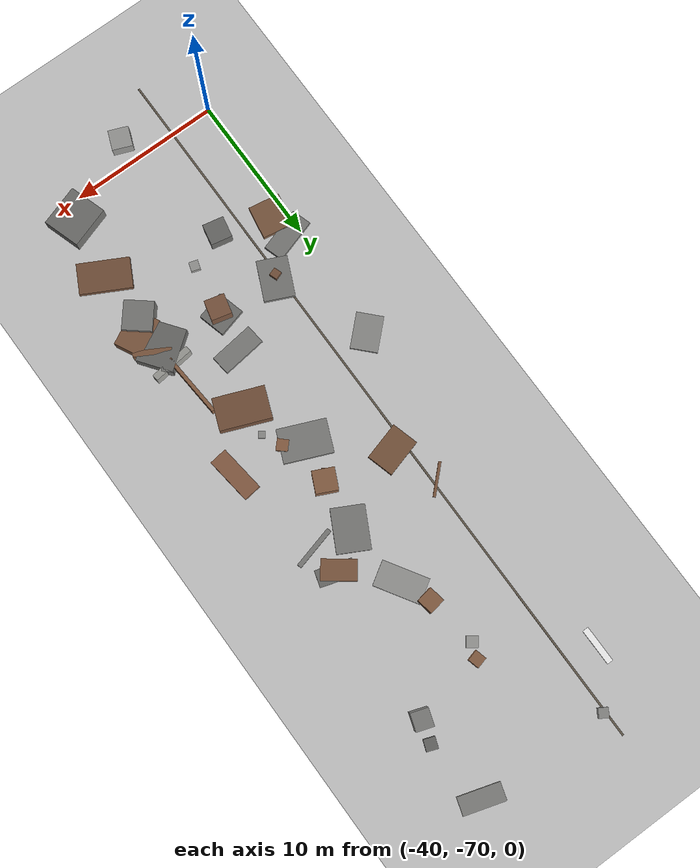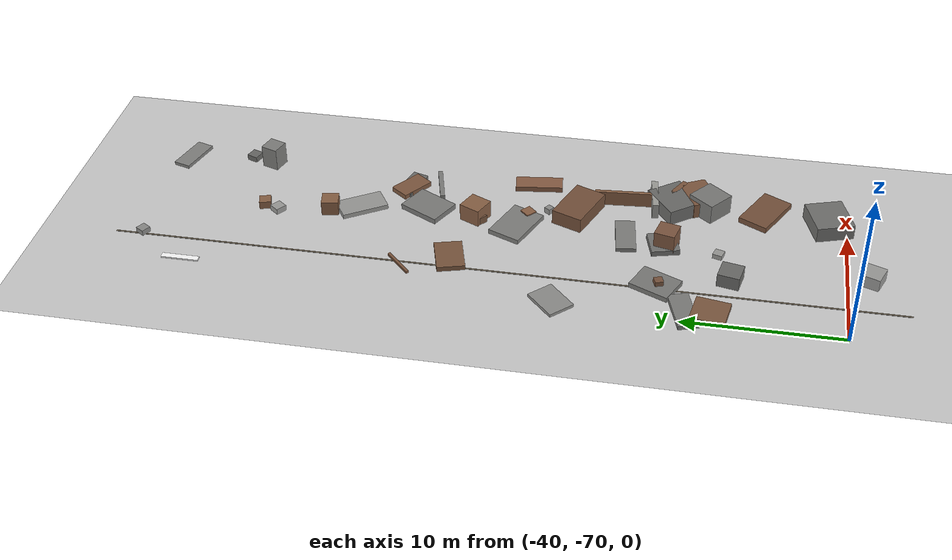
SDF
<sdf version="1.6">
 <world name="navitas_arena">
  <model name="ground_plane">
   <static>true</static>
   <link name="link">
    <collision name="collision">
     <geometry><plane><normal>0 0 1</normal><size>400 400</size></plane></geometry>
     <surface><friction><ode><mu>0.8</mu><mu2>0.8</mu2></ode></friction></surface>
    </collision>
    <visual name="visual">
     <cast_shadows>false</cast_shadows>
     <geometry><plane><normal>0 0 1</normal><size>400 400</size></plane></geometry>
     <material>
      <script><uri>file://media/materials/scripts/gazebo.material</uri><name>Gazebo/Grey</name></script>
     </material>
    </visual>
   </link>
  </model>
  <model name="gv_zor_-1">
   <static>true</static>
   <pose>-37.200 -48.800 0.010 0 0 0.000</pose>
   <link name="link">
    <collision name="col"><geometry><box><size>0.120 50.000 0.020</size></box></geometry></collision>
    <visual name="vis">
     <geometry><box><size>0.120 50.000 0.020</size></box></geometry>
     <material><ambient>0.42 0.38 0.32 1</ambient><diffuse>0.42 0.38 0.32 1</diffuse></material>
    </visual>
   </link>
  </model>
  <model name="blk_zor_1_0_0">
   <static>true</static>
   <pose>-28.604 -61.173 0.660 0 0 0.885</pose>
   <link name="link">
    <collision name="col"><geometry><box><size>1.904 1.904 1.320</size></box></geometry></collision>
    <visual name="vis">
     <geometry><box><size>1.904 1.904 1.320</size></box></geometry>
     <material><ambient>0.48 0.48 0.47 1</ambient><diffuse>0.48 0.48 0.47 1</diffuse></material>
    </visual>
   </link>
  </model>
  <model name="blk_zor_1_0_1">
   <static>true</static>
   <pose>-27.967 -60.430 0.500 0 0 0.477</pose>
   <link name="link">
    <collision name="col"><geometry><box><size>2.531 1.827 1.000</size></box></geometry></collision>
    <visual name="vis">
     <geometry><box><size>2.531 1.827 1.000</size></box></geometry>
     <material><ambient>0.50 0.35 0.25 1</ambient><diffuse>0.50 0.35 0.25 1</diffuse></material>
    </visual>
   </link>
  </model>
  <model name="blk_zor_1_1_0">
   <static>true</static>
   <pose>-28.702 -58.895 0.500 0 0 0.641</pose>
   <link name="link">
    <collision name="col"><geometry><box><size>2.751 2.394 1.000</size></box></geometry></collision>
    <visual name="vis">
     <geometry><box><size>2.751 2.394 1.000</size></box></geometry>
     <material><ambient>0.42 0.42 0.41 1</ambient><diffuse>0.42 0.42 0.41 1</diffuse></material>
    </visual>
   </link>
  </model>
  <model name="blk_zor_1_1_1">
   <static>true</static>
   <pose>-28.008 -58.865 0.500 0 0 2.625</pose>
   <link name="link">
    <collision name="col"><geometry><box><size>2.425 0.370 1.000</size></box></geometry></collision>
    <visual name="vis">
     <geometry><box><size>2.425 0.370 1.000</size></box></geometry>
     <material><ambient>0.50 0.35 0.25 1</ambient><diffuse>0.50 0.35 0.25 1</diffuse></material>
    </visual>
   </link>
  </model>
  <model name="blk_zor_1_2_0">
   <static>true</static>
   <pose>-28.562 -57.587 0.500 0 0 0.115</pose>
   <link name="link">
    <collision name="col"><geometry><box><size>2.722 0.417 1.000</size></box></geometry></collision>
    <visual name="vis">
     <geometry><box><size>2.722 0.417 1.000</size></box></geometry>
     <material><ambient>0.62 0.62 0.60 1</ambient><diffuse>0.62 0.62 0.60 1</diffuse></material>
    </visual>
   </link>
  </model>
  <model name="blk_zor_1_2_1">
   <static>true</static>
   <pose>-28.268 -57.582 0.500 0 0 0.850</pose>
   <link name="link">
    <collision name="col"><geometry><box><size>0.712 0.712 1.000</size></box></geometry></collision>
    <visual name="vis">
     <geometry><box><size>0.712 0.712 1.000</size></box></geometry>
     <material><ambient>0.48 0.48 0.47 1</ambient><diffuse>0.48 0.48 0.47 1</diffuse></material>
    </visual>
   </link>
  </model>
  <model name="blk_zor_1_3_0">
   <static>true</static>
   <pose>-28.773 -55.797 0.500 0 0 1.648</pose>
   <link name="link">
    <collision name="col"><geometry><box><size>4.188 0.234 1.000</size></box></geometry></collision>
    <visual name="vis">
     <geometry><box><size>4.188 0.234 1.000</size></box></geometry>
     <material><ambient>0.54 0.38 0.27 1</ambient><diffuse>0.54 0.38 0.27 1</diffuse></material>
    </visual>
   </link>
  </model>
  <model name="chic_zor_2">
   <static>true</static>
   <pose>-29.046 -68.800 0.500 0 0 0.314</pose>
   <link name="link">
    <collision name="col"><geometry><box><size>2.754 2.471 1.000</size></box></geometry></collision>
    <visual name="vis">
     <geometry><box><size>2.754 2.471 1.000</size></box></geometry>
     <material><ambient>0.44 0.44 0.43 1</ambient><diffuse>0.44 0.44 0.43 1</diffuse></material>
    </visual>
   </link>
  </model>
  <model name="chic_zor_4">
   <static>true</static>
   <pose>-30.419 -52.800 0.500 0 0 2.766</pose>
   <link name="link">
    <collision name="col"><geometry><box><size>3.325 2.079 1.000</size></box></geometry></collision>
    <visual name="vis">
     <geometry><box><size>3.325 2.079 1.000</size></box></geometry>
     <material><ambient>0.46 0.32 0.23 1</ambient><diffuse>0.46 0.32 0.23 1</diffuse></material>
    </visual>
   </link>
  </model>
  <model name="chic_zor_6">
   <static>true</static>
   <pose>-32.719 -36.800 0.500 0 0 1.743</pose>
   <link name="link">
    <collision name="col"><geometry><box><size>1.093 1.093 1.000</size></box></geometry></collision>
    <visual name="vis">
     <geometry><box><size>1.093 1.093 1.000</size></box></geometry>
     <material><ambient>0.54 0.38 0.27 1</ambient><diffuse>0.54 0.38 0.27 1</diffuse></material>
    </visual>
   </link>
  </model>
  <model name="deb_zor_2">
   <static>true</static>
   <pose>-32.366 -49.017 0.163 0 0 2.744</pose>
   <link name="link">
    <collision name="col"><geometry><box><size>3.172 2.189 0.327</size></box></geometry></collision>
    <visual name="vis">
     <geometry><box><size>3.172 2.189 0.327</size></box></geometry>
     <material><ambient>0.50 0.50 0.49 1</ambient><diffuse>0.50 0.50 0.49 1</diffuse></material>
    </visual>
   </link>
  </model>
  <model name="deb_zor_7">
   <static>true</static>
   <pose>-31.106 -49.606 0.203 0 0 0.809</pose>
   <link name="link">
    <collision name="col"><geometry><box><size>0.740 0.740 0.406</size></box></geometry></collision>
    <visual name="vis">
     <geometry><box><size>0.740 0.740 0.406</size></box></geometry>
     <material><ambient>0.55 0.38 0.27 1</ambient><diffuse>0.55 0.38 0.27 1</diffuse></material>
    </visual>
   </link>
  </model>
  <model name="deb_zor_9">
   <static>true</static>
   <pose>-31.994 -38.700 0.153 0 0 2.130</pose>
   <link name="link">
    <collision name="col"><geometry><box><size>3.059 1.661 0.307</size></box></geometry></collision>
    <visual name="vis">
     <geometry><box><size>3.059 1.661 0.307</size></box></geometry>
     <material><ambient>0.60 0.60 0.59 1</ambient><diffuse>0.60 0.60 0.59 1</diffuse></material>
    </visual>
   </link>
  </model>
  <model name="deb_zor_12">
   <static>true</static>
   <pose>-29.169 -41.458 0.138 0 0 2.848</pose>
   <link name="link">
    <collision name="col"><geometry><box><size>2.389 1.088 0.277</size></box></geometry></collision>
    <visual name="vis">
     <geometry><box><size>2.389 1.088 0.277</size></box></geometry>
     <material><ambient>0.43 0.43 0.42 1</ambient><diffuse>0.43 0.43 0.42 1</diffuse></material>
    </visual>
   </link>
  </model>
  <model name="deb_zor_13">
   <static>true</static>
   <pose>-33.280 -33.404 0.198 0 0 0.914</pose>
   <link name="link">
    <collision name="col"><geometry><box><size>0.727 0.727 0.396</size></box></geometry></collision>
    <visual name="vis">
     <geometry><box><size>0.727 0.727 0.396</size></box></geometry>
     <material><ambient>0.61 0.61 0.60 1</ambient><diffuse>0.61 0.61 0.60 1</diffuse></material>
    </visual>
   </link>
  </model>
  <model name="deb_zor_15">
   <static>true</static>
   <pose>-29.419 -41.478 0.166 0 0 2.500</pose>
   <link name="link">
    <collision name="col"><geometry><box><size>2.253 1.332 0.333</size></box></geometry></collision>
    <visual name="vis">
     <geometry><box><size>2.253 1.332 0.333</size></box></geometry>
     <material><ambient>0.50 0.35 0.25 1</ambient><diffuse>0.50 0.35 0.25 1</diffuse></material>
    </visual>
   </link>
  </model>
  <model name="deb_zor_18">
   <static>true</static>
   <pose>-28.145 -31.634 0.771 0 0 1.249</pose>
   <link name="link">
    <collision name="col"><geometry><box><size>1.143 1.143 1.542</size></box></geometry></collision>
    <visual name="vis">
     <geometry><box><size>1.143 1.143 1.542</size></box></geometry>
     <material><ambient>0.50 0.50 0.49 1</ambient><diffuse>0.50 0.50 0.49 1</diffuse></material>
    </visual>
   </link>
  </model>
  <model name="deb_zor_21">
   <static>true</static>
   <pose>-36.354 -45.430 0.165 0 0 0.277</pose>
   <link name="link">
    <collision name="col"><geometry><box><size>2.534 1.784 0.330</size></box></geometry></collision>
    <visual name="vis">
     <geometry><box><size>2.534 1.784 0.330</size></box></geometry>
     <material><ambient>0.48 0.34 0.24 1</ambient><diffuse>0.48 0.34 0.24 1</diffuse></material>
    </visual>
   </link>
  </model>
  <model name="deb_zor_24">
   <static>true</static>
   <pose>-28.279 -25.866 0.116 0 0 2.847</pose>
   <link name="link">
    <collision name="col"><geometry><box><size>2.737 1.155 0.231</size></box></geometry></collision>
    <visual name="vis">
     <geometry><box><size>2.737 1.155 0.231</size></box></geometry>
     <material><ambient>0.51 0.51 0.50 1</ambient><diffuse>0.51 0.51 0.50 1</diffuse></material>
    </visual>
   </link>
  </model>
  <model name="deb_zor_26">
   <static>true</static>
   <pose>-32.849 -58.713 0.689 0 0 1.330</pose>
   <link name="link">
    <collision name="col"><geometry><box><size>1.330 1.330 1.377</size></box></geometry></collision>
    <visual name="vis">
     <geometry><box><size>1.330 1.330 1.377</size></box></geometry>
     <material><ambient>0.49 0.34 0.25 1</ambient><diffuse>0.49 0.34 0.25 1</diffuse></material>
    </visual>
   </link>
  </model>
  <model name="deb_zor_27">
   <static>true</static>
   <pose>-28.984 -43.407 0.183 0 0 0.254</pose>
   <link name="link">
    <collision name="col"><geometry><box><size>2.845 0.297 0.365</size></box></geometry></collision>
    <visual name="vis">
     <geometry><box><size>2.845 0.297 0.365</size></box></geometry>
     <material><ambient>0.49 0.49 0.48 1</ambient><diffuse>0.49 0.49 0.48 1</diffuse></material>
    </visual>
   </link>
  </model>
  <model name="deb_zor_28">
   <static>true</static>
   <pose>-39.478 -52.276 0.103 0 0 0.762</pose>
   <link name="link">
    <collision name="col"><geometry><box><size>2.346 1.747 0.206</size></box></geometry></collision>
    <visual name="vis">
     <geometry><box><size>2.346 1.747 0.206</size></box></geometry>
     <material><ambient>0.56 0.56 0.55 1</ambient><diffuse>0.56 0.56 0.55 1</diffuse></material>
    </visual>
   </link>
  </model>
  <model name="deb_zor_39">
   <static>true</static>
   <pose>-38.889 -61.936 0.172 0 0 0.824</pose>
   <link name="link">
    <collision name="col"><geometry><box><size>0.413 0.413 0.344</size></box></geometry></collision>
    <visual name="vis">
     <geometry><box><size>0.413 0.413 0.344</size></box></geometry>
     <material><ambient>0.60 0.60 0.59 1</ambient><diffuse>0.60 0.60 0.59 1</diffuse></material>
    </visual>
   </link>
  </model>
  <model name="deb_zor_40">
   <static>true</static>
   <pose>-27.749 -30.119 0.195 0 0 1.219</pose>
   <link name="link">
    <collision name="col"><geometry><box><size>0.749 0.749 0.389</size></box></geometry></collision>
    <visual name="vis">
     <geometry><box><size>0.749 0.749 0.389</size></box></geometry>
     <material><ambient>0.41 0.41 0.40 1</ambient><diffuse>0.41 0.41 0.40 1</diffuse></material>
    </visual>
   </link>
  </model>
  <model name="deb_zor_46">
   <static>true</static>
   <pose>-31.866 -46.249 0.585 0 0 2.703</pose>
   <link name="link">
    <collision name="col"><geometry><box><size>1.429 1.429 1.169</size></box></geometry></collision>
    <visual name="vis">
     <geometry><box><size>1.429 1.429 1.169</size></box></geometry>
     <material><ambient>0.54 0.38 0.27 1</ambient><diffuse>0.54 0.38 0.27 1</diffuse></material>
    </visual>
   </link>
  </model>
  <model name="deb_zor_59">
   <static>true</static>
   <pose>-37.478 -42.400 0.084 0 0 0.769</pose>
   <link name="link">
    <collision name="col"><geometry><box><size>2.210 0.181 0.168</size></box></geometry></collision>
    <visual name="vis">
     <geometry><box><size>2.210 0.181 0.168</size></box></geometry>
     <material><ambient>0.49 0.34 0.24 1</ambient><diffuse>0.49 0.34 0.24 1</diffuse></material>
    </visual>
   </link>
  </model>
  <model name="deb_zor_65">
   <static>true</static>
   <pose>-37.037 -58.549 0.325 0 0 0.337</pose>
   <link name="link">
    <collision name="col"><geometry><box><size>0.535 0.535 0.650</size></box></geometry></collision>
    <visual name="vis">
     <geometry><box><size>0.535 0.535 0.650</size></box></geometry>
     <material><ambient>0.47 0.33 0.24 1</ambient><diffuse>0.47 0.33 0.24 1</diffuse></material>
    </visual>
   </link>
  </model>
  <model name="deb_zor_66">
   <static>true</static>
   <pose>-35.689 -62.849 0.447 0 0 2.940</pose>
   <link name="link">
    <collision name="col"><geometry><box><size>1.398 1.398 0.894</size></box></geometry></collision>
    <visual name="vis">
     <geometry><box><size>1.398 1.398 0.894</size></box></geometry>
     <material><ambient>0.42 0.42 0.41 1</ambient><diffuse>0.42 0.42 0.41 1</diffuse></material>
    </visual>
   </link>
  </model>
  <model name="deb_zor_67">
   <static>true</static>
   <pose>-39.049 -61.824 0.173 0 0 2.975</pose>
   <link name="link">
    <collision name="col"><geometry><box><size>2.072 2.167 0.347</size></box></geometry></collision>
    <visual name="vis">
     <geometry><box><size>2.072 2.167 0.347</size></box></geometry>
     <material><ambient>0.49 0.35 0.25 1</ambient><diffuse>0.49 0.35 0.25 1</diffuse></material>
    </visual>
   </link>
  </model>
  <model name="deb_zor_68">
   <static>true</static>
   <pose>-32.370 -56.065 0.136 0 0 0.125</pose>
   <link name="link">
    <collision name="col"><geometry><box><size>2.943 1.281 0.272</size></box></geometry></collision>
    <visual name="vis">
     <geometry><box><size>2.943 1.281 0.272</size></box></geometry>
     <material><ambient>0.50 0.50 0.49 1</ambient><diffuse>0.50 0.50 0.49 1</diffuse></material>
    </visual>
   </link>
  </model>
  <model name="deb_zor_69">
   <static>true</static>
   <pose>-34.270 -71.419 0.416 0 0 1.194</pose>
   <link name="link">
    <collision name="col"><geometry><box><size>1.334 1.334 0.831</size></box></geometry></collision>
    <visual name="vis">
     <geometry><box><size>1.334 1.334 0.831</size></box></geometry>
     <material><ambient>0.61 0.61 0.60 1</ambient><diffuse>0.61 0.61 0.60 1</diffuse></material>
    </visual>
   </link>
  </model>
  <model name="deb_zor_72">
   <static>true</static>
   <pose>-27.734 -49.826 0.178 0 0 1.697</pose>
   <link name="link">
    <collision name="col"><geometry><box><size>3.104 1.175 0.356</size></box></geometry></collision>
    <visual name="vis">
     <geometry><box><size>3.104 1.175 0.356</size></box></geometry>
     <material><ambient>0.54 0.37 0.27 1</ambient><diffuse>0.54 0.37 0.27 1</diffuse></material>
    </visual>
   </link>
  </model>
  <model name="deb_zor_77">
   <static>true</static>
   <pose>-33.303 -62.021 0.160 0 0 2.836</pose>
   <link name="link">
    <collision name="col"><geometry><box><size>0.611 0.611 0.319</size></box></geometry></collision>
    <visual name="vis">
     <geometry><box><size>0.611 0.611 0.319</size></box></geometry>
     <material><ambient>0.60 0.60 0.59 1</ambient><diffuse>0.60 0.60 0.59 1</diffuse></material>
    </visual>
   </link>
  </model>
  <model name="deb_zor_79">
   <static>true</static>
   <pose>-32.904 -32.424 0.263 0 0 0.258</pose>
   <link name="link">
    <collision name="col"><geometry><box><size>0.754 0.754 0.526</size></box></geometry></collision>
    <visual name="vis">
     <geometry><box><size>0.754 0.754 0.526</size></box></geometry>
     <material><ambient>0.54 0.38 0.27 1</ambient><diffuse>0.54 0.38 0.27 1</diffuse></material>
    </visual>
   </link>
  </model>
  <model name="deb_zor_82">
   <static>true</static>
   <pose>-30.380 -52.801 0.486 0 0 0.064</pose>
   <link name="link">
    <collision name="col"><geometry><box><size>1.386 1.386 0.972</size></box></geometry></collision>
    <visual name="vis">
     <geometry><box><size>1.386 1.386 0.972</size></box></geometry>
     <material><ambient>0.50 0.35 0.25 1</ambient><diffuse>0.50 0.35 0.25 1</diffuse></material>
    </visual>
   </link>
  </model>
  <model name="deb_zor_85">
   <static>true</static>
   <pose>-32.213 -46.662 0.252 0 0 0.846</pose>
   <link name="link">
    <collision name="col"><geometry><box><size>0.585 0.585 0.504</size></box></geometry></collision>
    <visual name="vis">
     <geometry><box><size>0.585 0.585 0.504</size></box></geometry>
     <material><ambient>0.45 0.32 0.23 1</ambient><diffuse>0.45 0.32 0.23 1</diffuse></material>
    </visual>
   </link>
  </model>
  <model name="deb_zor_89">
   <static>true</static>
   <pose>-37.026 -25.567 0.186 0 0 1.025</pose>
   <link name="link">
    <collision name="col"><geometry><box><size>0.623 0.623 0.373</size></box></geometry></collision>
    <visual name="vis">
     <geometry><box><size>0.623 0.623 0.373</size></box></geometry>
     <material><ambient>0.55 0.55 0.54 1</ambient><diffuse>0.55 0.55 0.54 1</diffuse></material>
    </visual>
   </link>
  </model>
  <model name="deb_zor_96">
   <static>true</static>
   <pose>-30.469 -50.882 0.192 0 0 0.952</pose>
   <link name="link">
    <collision name="col"><geometry><box><size>0.440 0.440 0.385</size></box></geometry></collision>
    <visual name="vis">
     <geometry><box><size>0.440 0.440 0.385</size></box></geometry>
     <material><ambient>0.56 0.56 0.55 1</ambient><diffuse>0.56 0.56 0.55 1</diffuse></material>
    </visual>
   </link>
  </model>
  <model name="deb_zor_97">
   <static>true</static>
   <pose>-32.850 -58.504 0.176 0 0 0.260</pose>
   <link name="link">
    <collision name="col"><geometry><box><size>1.904 1.816 0.353</size></box></geometry></collision>
    <visual name="vis">
     <geometry><box><size>1.904 1.816 0.353</size></box></geometry>
     <material><ambient>0.45 0.45 0.44 1</ambient><diffuse>0.45 0.45 0.44 1</diffuse></material>
    </visual>
   </link>
  </model>
  <model name="deb_zor_102">
   <static>true</static>
   <pose>-28.410 -64.769 0.193 0 0 2.655</pose>
   <link name="link">
    <collision name="col"><geometry><box><size>3.377 1.989 0.386</size></box></geometry></collision>
    <visual name="vis">
     <geometry><box><size>3.377 1.989 0.386</size></box></geometry>
     <material><ambient>0.46 0.32 0.23 1</ambient><diffuse>0.46 0.32 0.23 1</diffuse></material>
    </visual>
   </link>
  </model>
  <model name="deb_zor_112">
   <static>true</static>
   <pose>-39.149 -60.222 0.140 0 0 0.301</pose>
   <link name="link">
    <collision name="col"><geometry><box><size>2.967 1.308 0.280</size></box></geometry></collision>
    <visual name="vis">
     <geometry><box><size>2.967 1.308 0.280</size></box></geometry>
     <material><ambient>0.49 0.49 0.48 1</ambient><diffuse>0.49 0.49 0.48 1</diffuse></material>
    </visual>
   </link>
  </model>
  <model name="deb_zor_115">
   <static>true</static>
   <pose>-36.905 -58.374 0.166 0 0 1.144</pose>
   <link name="link">
    <collision name="col"><geometry><box><size>2.649 1.994 0.332</size></box></geometry></collision>
    <visual name="vis">
     <geometry><box><size>2.649 1.994 0.332</size></box></geometry>
     <material><ambient>0.48 0.48 0.47 1</ambient><diffuse>0.48 0.48 0.47 1</diffuse></material>
    </visual>
   </link>
  </model>
  <model name="deb_zor_119">
   <static>true</static>
   <pose>-31.431 -43.046 0.181 0 0 1.085</pose>
   <link name="link">
    <collision name="col"><geometry><box><size>2.808 2.153 0.362</size></box></geometry></collision>
    <visual name="vis">
     <geometry><box><size>2.808 2.153 0.362</size></box></geometry>
     <material><ambient>0.49 0.49 0.48 1</ambient><diffuse>0.49 0.49 0.48 1</diffuse></material>
    </visual>
   </link>
  </model>
  <model name="H_zor_r">
   <static>true</static>
   <pose>-39.200 -28.800 0.060 0 0 0.000</pose>
   <link name="link">
    <collision name="col"><geometry><box><size>0.400 2.400 0.100</size></box></geometry></collision>
    <visual name="vis">
     <geometry><box><size>0.400 2.400 0.100</size></box></geometry>
     <material><ambient>1.00 1.00 1.00 1</ambient><diffuse>1.00 1.00 1.00 1</diffuse></material>
    </visual>
   </link>
  </model>
 </world>
</sdf>
